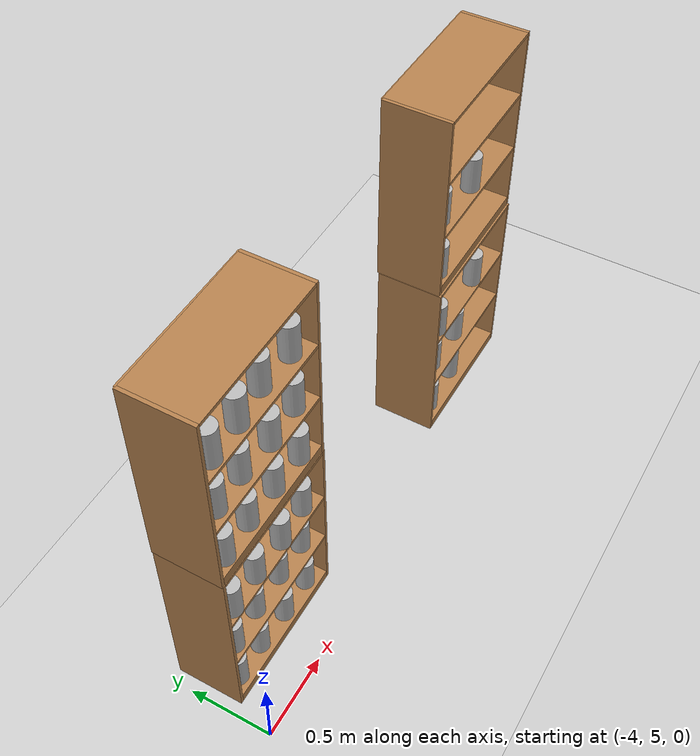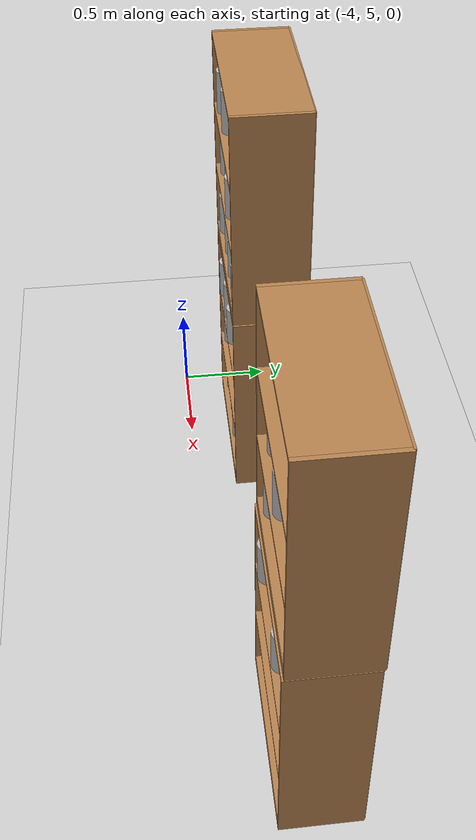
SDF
<sdf version="1.7">
 <world name="default">
  <model name="ground_plane">
   <static>1</static>
   <link name="link">
    <collision name="collision">
     <geometry><plane><normal>0 0 1</normal><size>100 100</size></plane></geometry>
     <surface><friction><ode><mu>100</mu><mu2>50</mu2></ode></friction></surface>
    </collision>
    <visual name="visual">
     <cast_shadows>0</cast_shadows>
     <geometry><plane><normal>0 0 1</normal><size>100 100</size></plane></geometry>
     <material>
      <script><uri>file://media/materials/scripts/gazebo.material</uri><name>Gazebo/Grey</name></script>
     </material>
    </visual>
   </link>
  </model>
  <model name="bookshelf_2_clone">
   <static>1</static>
   <link name="link">
    <inertial><mass>1</mass></inertial>
    <collision name="back">
     <pose>0 0.005 0.6 0 -0 0</pose>
     <geometry><box><size>0.9 0.01 1.2</size></box></geometry>
    </collision>
    <visual name="visual1">
     <pose>0 0.005 0.6 0 -0 0</pose>
     <geometry><box><size>0.9 0.01 1.2</size></box></geometry>
     <material>
      <script><uri>file://media/materials/scripts/gazebo.material</uri><name>Gazebo/Wood</name></script>
     </material>
    </visual>
    <collision name="left_side">
     <pose>0.45 -0.195 0.6 0 -0 0</pose>
     <geometry><box><size>0.02 0.4 1.2</size></box></geometry>
    </collision>
    <visual name="visual2">
     <pose>0.45 -0.195 0.6 0 -0 0</pose>
     <geometry><box><size>0.02 0.4 1.2</size></box></geometry>
     <material>
      <script><uri>file://media/materials/scripts/gazebo.material</uri><name>Gazebo/Wood</name></script>
     </material>
    </visual>
    <collision name="right_side">
     <pose>-0.45 -0.195 0.6 0 -0 0</pose>
     <geometry><box><size>0.02 0.4 1.2</size></box></geometry>
    </collision>
    <visual name="visual3">
     <pose>-0.45 -0.195 0.6 0 -0 0</pose>
     <geometry><box><size>0.02 0.4 1.2</size></box></geometry>
     <material>
      <script><uri>file://media/materials/scripts/gazebo.material</uri><name>Gazebo/Wood</name></script>
     </material>
    </visual>
    <collision name="bottom">
     <pose>0 -0.195 0.03 0 -0 0</pose>
     <geometry><box><size>0.88 0.4 0.06</size></box></geometry>
    </collision>
    <visual name="visual4">
     <pose>0 -0.195 0.03 0 -0 0</pose>
     <geometry><box><size>0.88 0.4 0.06</size></box></geometry>
     <material>
      <script><uri>file://media/materials/scripts/gazebo.material</uri><name>Gazebo/Wood</name></script>
     </material>
    </visual>
    <collision name="top">
     <pose>0 -0.195 1.19 0 -0 0</pose>
     <geometry><box><size>0.88 0.4 0.02</size></box></geometry>
    </collision>
    <visual name="visual5">
     <pose>0 -0.195 1.19 0 -0 0</pose>
     <geometry><box><size>0.88 0.4 0.02</size></box></geometry>
     <material>
      <script><uri>file://media/materials/scripts/gazebo.material</uri><name>Gazebo/Wood</name></script>
     </material>
    </visual>
    <collision name="low_shelf">
     <pose>0 -0.195 0.43 0 -0 0</pose>
     <geometry><box><size>0.88 0.4 0.02</size></box></geometry>
    </collision>
    <visual name="visual6">
     <pose>0 -0.195 0.43 0 -0 0</pose>
     <geometry><box><size>0.88 0.4 0.02</size></box></geometry>
     <material>
      <script><uri>file://media/materials/scripts/gazebo.material</uri><name>Gazebo/Wood</name></script>
     </material>
    </visual>
    <collision name="high_shelf">
     <pose>0 -0.195 0.8 0 -0 0</pose>
     <geometry><box><size>0.88 0.4 0.02</size></box></geometry>
    </collision>
    <visual name="visual7">
     <pose>0 -0.195 0.8 0 -0 0</pose>
     <geometry><box><size>0.88 0.4 0.02</size></box></geometry>
     <material>
      <script><uri>file://media/materials/scripts/gazebo.material</uri><name>Gazebo/Wood</name></script>
     </material>
    </visual>
   </link>
   <pose>-1.30264 5.59901 0 0 -0 0</pose>
  </model>
  <model name="bookshelf_2_clone_clone">
   <static>1</static>
   <link name="link">
    <inertial><mass>1</mass></inertial>
    <collision name="back">
     <pose>0 0.005 0.6 0 -0 0</pose>
     <geometry><box><size>0.9 0.01 1.2</size></box></geometry>
    </collision>
    <visual name="visual1">
     <pose>0 0.005 0.6 0 -0 0</pose>
     <geometry><box><size>0.9 0.01 1.2</size></box></geometry>
     <material>
      <script><uri>file://media/materials/scripts/gazebo.material</uri><name>Gazebo/Wood</name></script>
     </material>
    </visual>
    <collision name="left_side">
     <pose>0.45 -0.195 0.6 0 -0 0</pose>
     <geometry><box><size>0.02 0.4 1.2</size></box></geometry>
    </collision>
    <visual name="visual2">
     <pose>0.45 -0.195 0.6 0 -0 0</pose>
     <geometry><box><size>0.02 0.4 1.2</size></box></geometry>
     <material>
      <script><uri>file://media/materials/scripts/gazebo.material</uri><name>Gazebo/Wood</name></script>
     </material>
    </visual>
    <collision name="right_side">
     <pose>-0.45 -0.195 0.6 0 -0 0</pose>
     <geometry><box><size>0.02 0.4 1.2</size></box></geometry>
    </collision>
    <visual name="visual3">
     <pose>-0.45 -0.195 0.6 0 -0 0</pose>
     <geometry><box><size>0.02 0.4 1.2</size></box></geometry>
     <material>
      <script><uri>file://media/materials/scripts/gazebo.material</uri><name>Gazebo/Wood</name></script>
     </material>
    </visual>
    <collision name="bottom">
     <pose>0 -0.195 0.03 0 -0 0</pose>
     <geometry><box><size>0.88 0.4 0.06</size></box></geometry>
    </collision>
    <visual name="visual4">
     <pose>0 -0.195 0.03 0 -0 0</pose>
     <geometry><box><size>0.88 0.4 0.06</size></box></geometry>
     <material>
      <script><uri>file://media/materials/scripts/gazebo.material</uri><name>Gazebo/Wood</name></script>
     </material>
    </visual>
    <collision name="top">
     <pose>0 -0.195 1.19 0 -0 0</pose>
     <geometry><box><size>0.88 0.4 0.02</size></box></geometry>
    </collision>
    <visual name="visual5">
     <pose>0 -0.195 1.19 0 -0 0</pose>
     <geometry><box><size>0.88 0.4 0.02</size></box></geometry>
     <material>
      <script><uri>file://media/materials/scripts/gazebo.material</uri><name>Gazebo/Wood</name></script>
     </material>
    </visual>
    <collision name="low_shelf">
     <pose>0 -0.195 0.43 0 -0 0</pose>
     <geometry><box><size>0.88 0.4 0.02</size></box></geometry>
    </collision>
    <visual name="visual6">
     <pose>0 -0.195 0.43 0 -0 0</pose>
     <geometry><box><size>0.88 0.4 0.02</size></box></geometry>
     <material>
      <script><uri>file://media/materials/scripts/gazebo.material</uri><name>Gazebo/Wood</name></script>
     </material>
    </visual>
    <collision name="high_shelf">
     <pose>0 -0.195 0.8 0 -0 0</pose>
     <geometry><box><size>0.88 0.4 0.02</size></box></geometry>
    </collision>
    <visual name="visual7">
     <pose>0 -0.195 0.8 0 -0 0</pose>
     <geometry><box><size>0.88 0.4 0.02</size></box></geometry>
     <material>
      <script><uri>file://media/materials/scripts/gazebo.material</uri><name>Gazebo/Wood</name></script>
     </material>
    </visual>
   </link>
   <pose>-3.46853 5.62428 0 0 -0 0</pose>
  </model>
  <model name="bookshelf_3_clone">
   <static>1</static>
   <link name="link">
    <inertial><mass>1</mass></inertial>
    <collision name="back">
     <pose>0 0.005 0.6 0 -0 0</pose>
     <geometry><box><size>0.9 0.01 1.2</size></box></geometry>
    </collision>
    <visual name="visual1">
     <pose>0 0.005 0.6 0 -0 0</pose>
     <geometry><box><size>0.9 0.01 1.2</size></box></geometry>
     <material>
      <script><uri>file://media/materials/scripts/gazebo.material</uri><name>Gazebo/Wood</name></script>
     </material>
    </visual>
    <collision name="left_side">
     <pose>0.45 -0.195 0.6 0 -0 0</pose>
     <geometry><box><size>0.02 0.4 1.2</size></box></geometry>
    </collision>
    <visual name="visual2">
     <pose>0.45 -0.195 0.6 0 -0 0</pose>
     <geometry><box><size>0.02 0.4 1.2</size></box></geometry>
     <material>
      <script><uri>file://media/materials/scripts/gazebo.material</uri><name>Gazebo/Wood</name></script>
     </material>
    </visual>
    <collision name="right_side">
     <pose>-0.45 -0.195 0.6 0 -0 0</pose>
     <geometry><box><size>0.02 0.4 1.2</size></box></geometry>
    </collision>
    <visual name="visual3">
     <pose>-0.45 -0.195 0.6 0 -0 0</pose>
     <geometry><box><size>0.02 0.4 1.2</size></box></geometry>
     <material>
      <script><uri>file://media/materials/scripts/gazebo.material</uri><name>Gazebo/Wood</name></script>
     </material>
    </visual>
    <collision name="bottom">
     <pose>0 -0.195 0.03 0 -0 0</pose>
     <geometry><box><size>0.88 0.4 0.06</size></box></geometry>
    </collision>
    <visual name="visual4">
     <pose>0 -0.195 0.03 0 -0 0</pose>
     <geometry><box><size>0.88 0.4 0.06</size></box></geometry>
     <material>
      <script><uri>file://media/materials/scripts/gazebo.material</uri><name>Gazebo/Wood</name></script>
     </material>
    </visual>
    <collision name="top">
     <pose>0 -0.195 1.19 0 -0 0</pose>
     <geometry><box><size>0.88 0.4 0.02</size></box></geometry>
    </collision>
    <visual name="visual5">
     <pose>0 -0.195 1.19 0 -0 0</pose>
     <geometry><box><size>0.88 0.4 0.02</size></box></geometry>
     <material>
      <script><uri>file://media/materials/scripts/gazebo.material</uri><name>Gazebo/Wood</name></script>
     </material>
    </visual>
    <collision name="low_shelf">
     <pose>0 -0.195 0.43 0 -0 0</pose>
     <geometry><box><size>0.88 0.4 0.02</size></box></geometry>
    </collision>
    <visual name="visual6">
     <pose>0 -0.195 0.43 0 -0 0</pose>
     <geometry><box><size>0.88 0.4 0.02</size></box></geometry>
     <material>
      <script><uri>file://media/materials/scripts/gazebo.material</uri><name>Gazebo/Wood</name></script>
     </material>
    </visual>
    <collision name="high_shelf">
     <pose>0 -0.195 0.8 0 -0 0</pose>
     <geometry><box><size>0.88 0.4 0.02</size></box></geometry>
    </collision>
    <visual name="visual7">
     <pose>0 -0.195 0.8 0 -0 0</pose>
     <geometry><box><size>0.88 0.4 0.02</size></box></geometry>
     <material>
      <script><uri>file://media/materials/scripts/gazebo.material</uri><name>Gazebo/Wood</name></script>
     </material>
    </visual>
   </link>
   <pose>-1.30336 5.6079 1.20481 0 -0 0</pose>
  </model>
  <model name="bookshelf_3_clone_clone">
   <static>1</static>
   <link name="link">
    <inertial><mass>1</mass></inertial>
    <collision name="back">
     <pose>0 0.005 0.6 0 -0 0</pose>
     <geometry><box><size>0.9 0.01 1.2</size></box></geometry>
    </collision>
    <visual name="visual1">
     <pose>0 0.005 0.6 0 -0 0</pose>
     <geometry><box><size>0.9 0.01 1.2</size></box></geometry>
     <material>
      <script><uri>file://media/materials/scripts/gazebo.material</uri><name>Gazebo/Wood</name></script>
     </material>
    </visual>
    <collision name="left_side">
     <pose>0.45 -0.195 0.6 0 -0 0</pose>
     <geometry><box><size>0.02 0.4 1.2</size></box></geometry>
    </collision>
    <visual name="visual2">
     <pose>0.45 -0.195 0.6 0 -0 0</pose>
     <geometry><box><size>0.02 0.4 1.2</size></box></geometry>
     <material>
      <script><uri>file://media/materials/scripts/gazebo.material</uri><name>Gazebo/Wood</name></script>
     </material>
    </visual>
    <collision name="right_side">
     <pose>-0.45 -0.195 0.6 0 -0 0</pose>
     <geometry><box><size>0.02 0.4 1.2</size></box></geometry>
    </collision>
    <visual name="visual3">
     <pose>-0.45 -0.195 0.6 0 -0 0</pose>
     <geometry><box><size>0.02 0.4 1.2</size></box></geometry>
     <material>
      <script><uri>file://media/materials/scripts/gazebo.material</uri><name>Gazebo/Wood</name></script>
     </material>
    </visual>
    <collision name="bottom">
     <pose>0 -0.195 0.03 0 -0 0</pose>
     <geometry><box><size>0.88 0.4 0.06</size></box></geometry>
    </collision>
    <visual name="visual4">
     <pose>0 -0.195 0.03 0 -0 0</pose>
     <geometry><box><size>0.88 0.4 0.06</size></box></geometry>
     <material>
      <script><uri>file://media/materials/scripts/gazebo.material</uri><name>Gazebo/Wood</name></script>
     </material>
    </visual>
    <collision name="top">
     <pose>0 -0.195 1.19 0 -0 0</pose>
     <geometry><box><size>0.88 0.4 0.02</size></box></geometry>
    </collision>
    <visual name="visual5">
     <pose>0 -0.195 1.19 0 -0 0</pose>
     <geometry><box><size>0.88 0.4 0.02</size></box></geometry>
     <material>
      <script><uri>file://media/materials/scripts/gazebo.material</uri><name>Gazebo/Wood</name></script>
     </material>
    </visual>
    <collision name="low_shelf">
     <pose>0 -0.195 0.43 0 -0 0</pose>
     <geometry><box><size>0.88 0.4 0.02</size></box></geometry>
    </collision>
    <visual name="visual6">
     <pose>0 -0.195 0.43 0 -0 0</pose>
     <geometry><box><size>0.88 0.4 0.02</size></box></geometry>
     <material>
      <script><uri>file://media/materials/scripts/gazebo.material</uri><name>Gazebo/Wood</name></script>
     </material>
    </visual>
    <collision name="high_shelf">
     <pose>0 -0.195 0.8 0 -0 0</pose>
     <geometry><box><size>0.88 0.4 0.02</size></box></geometry>
    </collision>
    <visual name="visual7">
     <pose>0 -0.195 0.8 0 -0 0</pose>
     <geometry><box><size>0.88 0.4 0.02</size></box></geometry>
     <material>
      <script><uri>file://media/materials/scripts/gazebo.material</uri><name>Gazebo/Wood</name></script>
     </material>
    </visual>
   </link>
   <pose>-3.47373 5.62521 1.20481 0 -0 0</pose>
  </model>
  <model name="beer">
   <link name="link">
    <pose>0 0 0.115 0 -0 0</pose>
    <inertial>
     <mass>0.39</mass>
     <inertia><ixx>0.00058</ixx><ixy>0</ixy><ixz>0</ixz><iyy>0.00058</iyy><iyz>0</iyz><izz>0.00019</izz></inertia>
    </inertial>
    <collision name="collision">
     <geometry><cylinder><radius>0.055</radius><length>0.23</length></cylinder></geometry>
    </collision>
    <visual name="visual">
     <geometry><cylinder><radius>0.055</radius><length>0.23</length></cylinder></geometry>
     <material>
      <script>
       <uri>model://beer/materials/scripts</uri>
       <uri>model://beer/materials/textures</uri>
       <name>Beer/Diffuse</name>
      </script>
     </material>
    </visual>
   </link>
   <pose>-3.82317 5.30787 0.05999 -1e-06 2.6e-05 0.033014</pose>
  </model>
  <model name="beer_0">
   <link name="link">
    <pose>0 0 0.115 0 -0 0</pose>
    <inertial>
     <mass>0.39</mass>
     <inertia><ixx>0.00058</ixx><ixy>0</ixy><ixz>0</ixz><iyy>0.00058</iyy><iyz>0</iyz><izz>0.00019</izz></inertia>
    </inertial>
    <collision name="collision">
     <geometry><cylinder><radius>0.055</radius><length>0.23</length></cylinder></geometry>
    </collision>
    <visual name="visual">
     <geometry><cylinder><radius>0.055</radius><length>0.23</length></cylinder></geometry>
     <material>
      <script>
       <uri>model://beer/materials/scripts</uri>
       <uri>model://beer/materials/textures</uri>
       <name>Beer/Diffuse</name>
      </script>
     </material>
    </visual>
   </link>
   <pose>-3.60614 5.31067 0.059992 2.8e-05 5e-06 0.069484</pose>
  </model>
  <model name="beer_1">
   <link name="link">
    <pose>0 0 0.115 0 -0 0</pose>
    <inertial>
     <mass>0.39</mass>
     <inertia><ixx>0.00058</ixx><ixy>0</ixy><ixz>0</ixz><iyy>0.00058</iyy><iyz>0</iyz><izz>0.00019</izz></inertia>
    </inertial>
    <collision name="collision">
     <geometry><cylinder><radius>0.055</radius><length>0.23</length></cylinder></geometry>
    </collision>
    <visual name="visual">
     <geometry><cylinder><radius>0.055</radius><length>0.23</length></cylinder></geometry>
     <material>
      <script>
       <uri>model://beer/materials/scripts</uri>
       <uri>model://beer/materials/textures</uri>
       <name>Beer/Diffuse</name>
      </script>
     </material>
    </visual>
   </link>
   <pose>-3.37553 5.29923 0.059991 9e-06 -1.6e-05 0.034545</pose>
  </model>
  <model name="beer_2">
   <link name="link">
    <pose>0 0 0.115 0 -0 0</pose>
    <inertial>
     <mass>0.39</mass>
     <inertia><ixx>0.00058</ixx><ixy>0</ixy><ixz>0</ixz><iyy>0.00058</iyy><iyz>0</iyz><izz>0.00019</izz></inertia>
    </inertial>
    <collision name="collision">
     <geometry><cylinder><radius>0.055</radius><length>0.23</length></cylinder></geometry>
    </collision>
    <visual name="visual">
     <geometry><cylinder><radius>0.055</radius><length>0.23</length></cylinder></geometry>
     <material>
      <script>
       <uri>model://beer/materials/scripts</uri>
       <uri>model://beer/materials/textures</uri>
       <name>Beer/Diffuse</name>
      </script>
     </material>
    </visual>
   </link>
   <pose>-3.1447 5.30318 0.060001 1.9e-05 1e-05 0.008843</pose>
  </model>
  <model name="beer_3_clone">
   <link name="link">
    <pose>0 0 0.115 0 -0 0</pose>
    <inertial>
     <mass>0.39</mass>
     <inertia><ixx>0.00058</ixx><ixy>0</ixy><ixz>0</ixz><iyy>0.00058</iyy><iyz>0</iyz><izz>0.00019</izz></inertia>
    </inertial>
    <collision name="collision">
     <geometry><cylinder><radius>0.055</radius><length>0.23</length></cylinder></geometry>
    </collision>
    <visual name="visual">
     <geometry><cylinder><radius>0.055</radius><length>0.23</length></cylinder></geometry>
     <material>
      <script>
       <uri>model://beer/materials/scripts</uri>
       <uri>model://beer/materials/textures</uri>
       <name>Beer/Diffuse</name>
      </script>
     </material>
    </visual>
   </link>
   <pose>-3.60913 5.314 0.439992 1e-06 -2.8e-05 0.05272</pose>
  </model>
  <model name="beer_3_clone_0">
   <link name="link">
    <pose>0 0 0.115 0 -0 0</pose>
    <inertial>
     <mass>0.39</mass>
     <inertia><ixx>0.00058</ixx><ixy>0</ixy><ixz>0</ixz><iyy>0.00058</iyy><iyz>0</iyz><izz>0.00019</izz></inertia>
    </inertial>
    <collision name="collision">
     <geometry><cylinder><radius>0.055</radius><length>0.23</length></cylinder></geometry>
    </collision>
    <visual name="visual">
     <geometry><cylinder><radius>0.055</radius><length>0.23</length></cylinder></geometry>
     <material>
      <script>
       <uri>model://beer/materials/scripts</uri>
       <uri>model://beer/materials/textures</uri>
       <name>Beer/Diffuse</name>
      </script>
     </material>
    </visual>
   </link>
   <pose>-3.37405 5.31588 0.440001 -1e-06 2.6e-05 0.032316</pose>
  </model>
  <model name="beer_3_clone_1">
   <link name="link">
    <pose>0 0 0.115 0 -0 0</pose>
    <inertial>
     <mass>0.39</mass>
     <inertia><ixx>0.00058</ixx><ixy>0</ixy><ixz>0</ixz><iyy>0.00058</iyy><iyz>0</iyz><izz>0.00019</izz></inertia>
    </inertial>
    <collision name="collision">
     <geometry><cylinder><radius>0.055</radius><length>0.23</length></cylinder></geometry>
    </collision>
    <visual name="visual">
     <geometry><cylinder><radius>0.055</radius><length>0.23</length></cylinder></geometry>
     <material>
      <script>
       <uri>model://beer/materials/scripts</uri>
       <uri>model://beer/materials/textures</uri>
       <name>Beer/Diffuse</name>
      </script>
     </material>
    </visual>
   </link>
   <pose>-3.15021 5.31608 0.440001 1.5e-05 -2.1e-05 0.013857</pose>
  </model>
  <model name="beer_1_clone">
   <link name="link">
    <pose>0 0 0.115 0 -0 0</pose>
    <inertial>
     <mass>0.39</mass>
     <inertia><ixx>0.00058</ixx><ixy>0</ixy><ixz>0</ixz><iyy>0.00058</iyy><iyz>0</iyz><izz>0.00019</izz></inertia>
    </inertial>
    <collision name="collision">
     <geometry><cylinder><radius>0.055</radius><length>0.23</length></cylinder></geometry>
    </collision>
    <visual name="visual">
     <geometry><cylinder><radius>0.055</radius><length>0.23</length></cylinder></geometry>
     <material>
      <script>
       <uri>model://beer/materials/scripts</uri>
       <uri>model://beer/materials/textures</uri>
       <name>Beer/Diffuse</name>
      </script>
     </material>
    </visual>
   </link>
   <pose>-1.63131 5.28745 0.060001 1e-06 -2.7e-05 0.028112</pose>
  </model>
  <model name="beer_1_clone_0">
   <link name="link">
    <pose>0 0 0.115 0 -0 0</pose>
    <inertial>
     <mass>0.39</mass>
     <inertia><ixx>0.00058</ixx><ixy>0</ixy><ixz>0</ixz><iyy>0.00058</iyy><iyz>0</iyz><izz>0.00019</izz></inertia>
    </inertial>
    <collision name="collision">
     <geometry><cylinder><radius>0.055</radius><length>0.23</length></cylinder></geometry>
    </collision>
    <visual name="visual">
     <geometry><cylinder><radius>0.055</radius><length>0.23</length></cylinder></geometry>
     <material>
      <script>
       <uri>model://beer/materials/scripts</uri>
       <uri>model://beer/materials/textures</uri>
       <name>Beer/Diffuse</name>
      </script>
     </material>
    </visual>
   </link>
   <pose>-1.31844 5.30035 0.060002 2.8e-05 5e-06 0.011461</pose>
  </model>
  <model name="beer_3_clone_1_clone">
   <link name="link">
    <pose>0 0 0.115 0 -0 0</pose>
    <inertial>
     <mass>0.39</mass>
     <inertia><ixx>0.00058</ixx><ixy>0</ixy><ixz>0</ixz><iyy>0.00058</iyy><iyz>0</iyz><izz>0.00019</izz></inertia>
    </inertial>
    <collision name="collision">
     <geometry><cylinder><radius>0.055</radius><length>0.23</length></cylinder></geometry>
    </collision>
    <visual name="visual">
     <geometry><cylinder><radius>0.055</radius><length>0.23</length></cylinder></geometry>
     <material>
      <script>
       <uri>model://beer/materials/scripts</uri>
       <uri>model://beer/materials/textures</uri>
       <name>Beer/Diffuse</name>
      </script>
     </material>
    </visual>
   </link>
   <pose>-1.62515 5.29266 0.439992 -1e-06 2.7e-05 0.032814</pose>
  </model>
  <model name="beer_3_clone_1_clone_0">
   <link name="link">
    <pose>0 0 0.115 0 -0 0</pose>
    <inertial>
     <mass>0.39</mass>
     <inertia><ixx>0.00058</ixx><ixy>0</ixy><ixz>0</ixz><iyy>0.00058</iyy><iyz>0</iyz><izz>0.00019</izz></inertia>
    </inertial>
    <collision name="collision">
     <geometry><cylinder><radius>0.055</radius><length>0.23</length></cylinder></geometry>
    </collision>
    <visual name="visual">
     <geometry><cylinder><radius>0.055</radius><length>0.23</length></cylinder></geometry>
     <material>
      <script>
       <uri>model://beer/materials/scripts</uri>
       <uri>model://beer/materials/textures</uri>
       <name>Beer/Diffuse</name>
      </script>
     </material>
    </visual>
   </link>
   <pose>-1.32679 5.29036 0.440001 8e-06 2.5e-05 0.043128</pose>
  </model>
  <model name="beer_3_clone_clone_0">
   <link name="link">
    <pose>0 0 0.115 0 -0 0</pose>
    <inertial>
     <mass>0.39</mass>
     <inertia><ixx>0.00058</ixx><ixy>0</ixy><ixz>0</ixz><iyy>0.00058</iyy><iyz>0</iyz><izz>0.00019</izz></inertia>
    </inertial>
    <collision name="collision">
     <geometry><cylinder><radius>0.055</radius><length>0.23</length></cylinder></geometry>
    </collision>
    <visual name="visual">
     <geometry><cylinder><radius>0.055</radius><length>0.23</length></cylinder></geometry>
     <material>
      <script>
       <uri>model://beer/materials/scripts</uri>
       <uri>model://beer/materials/textures</uri>
       <name>Beer/Diffuse</name>
      </script>
     </material>
    </visual>
   </link>
   <pose>-3.8305 5.29924 0.439991 3e-06 1.3e-05 0.031266</pose>
  </model>
  <model name="beer_3_clone_clone_clone">
   <link name="link">
    <pose>0 0 0.115 0 -0 0</pose>
    <inertial>
     <mass>0.39</mass>
     <inertia><ixx>0.00058</ixx><ixy>0</ixy><ixz>0</ixz><iyy>0.00058</iyy><iyz>0</iyz><izz>0.00019</izz></inertia>
    </inertial>
    <collision name="collision">
     <geometry><cylinder><radius>0.055</radius><length>0.23</length></cylinder></geometry>
    </collision>
    <visual name="visual">
     <geometry><cylinder><radius>0.055</radius><length>0.23</length></cylinder></geometry>
     <material>
      <script>
       <uri>model://beer/materials/scripts</uri>
       <uri>model://beer/materials/textures</uri>
       <name>Beer/Diffuse</name>
      </script>
     </material>
    </visual>
   </link>
   <pose>-3.60941 5.2856 0.809992 3.8e-05 -6e-06 0.033975</pose>
  </model>
  <model name="beer_3_clone_clone_clone_clone">
   <link name="link">
    <pose>0 0 0.115 0 -0 0</pose>
    <inertial>
     <mass>0.39</mass>
     <inertia><ixx>0.00058</ixx><ixy>0</ixy><ixz>0</ixz><iyy>0.00058</iyy><iyz>0</iyz><izz>0.00019</izz></inertia>
    </inertial>
    <collision name="collision">
     <geometry><cylinder><radius>0.055</radius><length>0.23</length></cylinder></geometry>
    </collision>
    <visual name="visual">
     <geometry><cylinder><radius>0.055</radius><length>0.23</length></cylinder></geometry>
     <material>
      <script>
       <uri>model://beer/materials/scripts</uri>
       <uri>model://beer/materials/textures</uri>
       <name>Beer/Diffuse</name>
      </script>
     </material>
    </visual>
   </link>
   <pose>-3.37631 5.28052 0.810001 -2e-06 2.7e-05 0.023234</pose>
  </model>
  <model name="beer_3_clone_clone_clone_clone_0">
   <link name="link">
    <pose>0 0 0.115 0 -0 0</pose>
    <inertial>
     <mass>0.39</mass>
     <inertia><ixx>0.00058</ixx><ixy>0</ixy><ixz>0</ixz><iyy>0.00058</iyy><iyz>0</iyz><izz>0.00019</izz></inertia>
    </inertial>
    <collision name="collision">
     <geometry><cylinder><radius>0.055</radius><length>0.23</length></cylinder></geometry>
    </collision>
    <visual name="visual">
     <geometry><cylinder><radius>0.055</radius><length>0.23</length></cylinder></geometry>
     <material>
      <script>
       <uri>model://beer/materials/scripts</uri>
       <uri>model://beer/materials/textures</uri>
       <name>Beer/Diffuse</name>
      </script>
     </material>
    </visual>
   </link>
   <pose>-3.14883 5.29388 0.80999 -1.1e-05 2e-06 0.02577</pose>
  </model>
  <model name="beer_3_clone_clone_clone_clone_2">
   <link name="link">
    <pose>0 0 0.115 0 -0 0</pose>
    <inertial>
     <mass>0.39</mass>
     <inertia><ixx>0.00058</ixx><ixy>0</ixy><ixz>0</ixz><iyy>0.00058</iyy><iyz>0</iyz><izz>0.00019</izz></inertia>
    </inertial>
    <collision name="collision">
     <geometry><cylinder><radius>0.055</radius><length>0.23</length></cylinder></geometry>
    </collision>
    <visual name="visual">
     <geometry><cylinder><radius>0.055</radius><length>0.23</length></cylinder></geometry>
     <material>
      <script>
       <uri>model://beer/materials/scripts</uri>
       <uri>model://beer/materials/textures</uri>
       <name>Beer/Diffuse</name>
      </script>
     </material>
    </visual>
   </link>
   <pose>-3.82308 5.28091 0.809992 2.5e-05 1.7e-05 0.025071</pose>
  </model>
  <model name="beer_3_clone_clone_clone_clone_1_clone">
   <link name="link">
    <pose>0 0 0.115 0 -0 0</pose>
    <inertial>
     <mass>0.39</mass>
     <inertia><ixx>0.00058</ixx><ixy>0</ixy><ixz>0</ixz><iyy>0.00058</iyy><iyz>0</iyz><izz>0.00019</izz></inertia>
    </inertial>
    <collision name="collision">
     <geometry><cylinder><radius>0.055</radius><length>0.23</length></cylinder></geometry>
    </collision>
    <visual name="visual">
     <geometry><cylinder><radius>0.055</radius><length>0.23</length></cylinder></geometry>
     <material>
      <script>
       <uri>model://beer/materials/scripts</uri>
       <uri>model://beer/materials/textures</uri>
       <name>Beer/Diffuse</name>
      </script>
     </material>
    </visual>
   </link>
   <pose>-3.60069 5.30014 1.26481 -3e-06 2.1e-05 0.05691</pose>
  </model>
  <model name="beer_3_clone_clone_clone_clone_1_clone_0">
   <link name="link">
    <pose>0 0 0.115 0 -0 0</pose>
    <inertial>
     <mass>0.39</mass>
     <inertia><ixx>0.00058</ixx><ixy>0</ixy><ixz>0</ixz><iyy>0.00058</iyy><iyz>0</iyz><izz>0.00019</izz></inertia>
    </inertial>
    <collision name="collision">
     <geometry><cylinder><radius>0.055</radius><length>0.23</length></cylinder></geometry>
    </collision>
    <visual name="visual">
     <geometry><cylinder><radius>0.055</radius><length>0.23</length></cylinder></geometry>
     <material>
      <script>
       <uri>model://beer/materials/scripts</uri>
       <uri>model://beer/materials/textures</uri>
       <name>Beer/Diffuse</name>
      </script>
     </material>
    </visual>
   </link>
   <pose>-3.37709 5.2947 1.2648 -1e-06 2.6e-05 0.041204</pose>
  </model>
  <model name="beer_3_clone_clone_clone_clone_1_clone_1">
   <link name="link">
    <pose>0 0 0.115 0 -0 0</pose>
    <inertial>
     <mass>0.39</mass>
     <inertia><ixx>0.00058</ixx><ixy>0</ixy><ixz>0</ixz><iyy>0.00058</iyy><iyz>0</iyz><izz>0.00019</izz></inertia>
    </inertial>
    <collision name="collision">
     <geometry><cylinder><radius>0.055</radius><length>0.23</length></cylinder></geometry>
    </collision>
    <visual name="visual">
     <geometry><cylinder><radius>0.055</radius><length>0.23</length></cylinder></geometry>
     <material>
      <script>
       <uri>model://beer/materials/scripts</uri>
       <uri>model://beer/materials/textures</uri>
       <name>Beer/Diffuse</name>
      </script>
     </material>
    </visual>
   </link>
   <pose>-3.153 5.28934 1.26481 1.6e-05 -1.7e-05 0.02779</pose>
  </model>
  <model name="beer_3_clone_clone_clone_clone_1_clone_clone">
   <link name="link">
    <pose>0 0 0.115 0 -0 0</pose>
    <inertial>
     <mass>0.39</mass>
     <inertia><ixx>0.00058</ixx><ixy>0</ixy><ixz>0</ixz><iyy>0.00058</iyy><iyz>0</iyz><izz>0.00019</izz></inertia>
    </inertial>
    <collision name="collision">
     <geometry><cylinder><radius>0.055</radius><length>0.23</length></cylinder></geometry>
    </collision>
    <visual name="visual">
     <geometry><cylinder><radius>0.055</radius><length>0.23</length></cylinder></geometry>
     <material>
      <script>
       <uri>model://beer/materials/scripts</uri>
       <uri>model://beer/materials/textures</uri>
       <name>Beer/Diffuse</name>
      </script>
     </material>
    </visual>
   </link>
   <pose>-3.81529 5.29073 1.26481 2.6e-05 2.1e-05 0.033947</pose>
  </model>
  <model name="beer_3_clone_clone_clone_clone_1_clone_2">
   <link name="link">
    <pose>0 0 0.115 0 -0 0</pose>
    <inertial>
     <mass>0.39</mass>
     <inertia><ixx>0.00058</ixx><ixy>0</ixy><ixz>0</ixz><iyy>0.00058</iyy><iyz>0</iyz><izz>0.00019</izz></inertia>
    </inertial>
    <collision name="collision">
     <geometry><cylinder><radius>0.055</radius><length>0.23</length></cylinder></geometry>
    </collision>
    <visual name="visual">
     <geometry><cylinder><radius>0.055</radius><length>0.23</length></cylinder></geometry>
     <material>
      <script>
       <uri>model://beer/materials/scripts</uri>
       <uri>model://beer/materials/textures</uri>
       <name>Beer/Diffuse</name>
      </script>
     </material>
    </visual>
   </link>
   <pose>-3.60665 5.30831 1.64481 2.8e-05 6e-06 0.051455</pose>
  </model>
  <model name="beer_3_clone_clone_clone_clone_1_clone_3">
   <link name="link">
    <pose>0 0 0.115 0 -0 0</pose>
    <inertial>
     <mass>0.39</mass>
     <inertia><ixx>0.00058</ixx><ixy>0</ixy><ixz>0</ixz><iyy>0.00058</iyy><iyz>0</iyz><izz>0.00019</izz></inertia>
    </inertial>
    <collision name="collision">
     <geometry><cylinder><radius>0.055</radius><length>0.23</length></cylinder></geometry>
    </collision>
    <visual name="visual">
     <geometry><cylinder><radius>0.055</radius><length>0.23</length></cylinder></geometry>
     <material>
      <script>
       <uri>model://beer/materials/scripts</uri>
       <uri>model://beer/materials/textures</uri>
       <name>Beer/Diffuse</name>
      </script>
     </material>
    </visual>
   </link>
   <pose>-3.38473 5.28834 1.64481 -1e-06 2.7e-05 0.03757</pose>
  </model>
  <model name="beer_3_clone_clone_clone_clone_1_clone_4">
   <link name="link">
    <pose>0 0 0.115 0 -0 0</pose>
    <inertial>
     <mass>0.39</mass>
     <inertia><ixx>0.00058</ixx><ixy>0</ixy><ixz>0</ixz><iyy>0.00058</iyy><iyz>0</iyz><izz>0.00019</izz></inertia>
    </inertial>
    <collision name="collision">
     <geometry><cylinder><radius>0.055</radius><length>0.23</length></cylinder></geometry>
    </collision>
    <visual name="visual">
     <geometry><cylinder><radius>0.055</radius><length>0.23</length></cylinder></geometry>
     <material>
      <script>
       <uri>model://beer/materials/scripts</uri>
       <uri>model://beer/materials/textures</uri>
       <name>Beer/Diffuse</name>
      </script>
     </material>
    </visual>
   </link>
   <pose>-3.15409 5.30206 1.64481 1.2e-05 -1.3e-05 0.027102</pose>
  </model>
  <model name="beer_3_clone_clone_clone_clone_1_clone_2_clone_0">
   <link name="link">
    <pose>0 0 0.115 0 -0 0</pose>
    <inertial>
     <mass>0.39</mass>
     <inertia><ixx>0.00058</ixx><ixy>0</ixy><ixz>0</ixz><iyy>0.00058</iyy><iyz>0</iyz><izz>0.00019</izz></inertia>
    </inertial>
    <collision name="collision">
     <geometry><cylinder><radius>0.055</radius><length>0.23</length></cylinder></geometry>
    </collision>
    <visual name="visual">
     <geometry><cylinder><radius>0.055</radius><length>0.23</length></cylinder></geometry>
     <material>
      <script>
       <uri>model://beer/materials/scripts</uri>
       <uri>model://beer/materials/textures</uri>
       <name>Beer/Diffuse</name>
      </script>
     </material>
    </visual>
   </link>
   <pose>-3.81197 5.30252 1.64481 -2e-05 -4e-06 0.036989</pose>
  </model>
  <model name="beer_3_clone_clone_clone_clone_1_clone_2_clone_clone">
   <link name="link">
    <pose>0 0 0.115 0 -0 0</pose>
    <inertial>
     <mass>0.39</mass>
     <inertia><ixx>0.00058</ixx><ixy>0</ixy><ixz>0</ixz><iyy>0.00058</iyy><iyz>0</iyz><izz>0.00019</izz></inertia>
    </inertial>
    <collision name="collision">
     <geometry><cylinder><radius>0.055</radius><length>0.23</length></cylinder></geometry>
    </collision>
    <visual name="visual">
     <geometry><cylinder><radius>0.055</radius><length>0.23</length></cylinder></geometry>
     <material>
      <script>
       <uri>model://beer/materials/scripts</uri>
       <uri>model://beer/materials/textures</uri>
       <name>Beer/Diffuse</name>
      </script>
     </material>
    </visual>
   </link>
   <pose>-3.59694 5.29694 2.01481 2.2e-05 1.3e-05 0.050829</pose>
  </model>
  <model name="beer_3_clone_clone_clone_clone_1_clone_2_clone_clone_clone">
   <link name="link">
    <pose>0 0 0.115 0 -0 0</pose>
    <inertial>
     <mass>0.39</mass>
     <inertia><ixx>0.00058</ixx><ixy>0</ixy><ixz>0</ixz><iyy>0.00058</iyy><iyz>0</iyz><izz>0.00019</izz></inertia>
    </inertial>
    <collision name="collision">
     <geometry><cylinder><radius>0.055</radius><length>0.23</length></cylinder></geometry>
    </collision>
    <visual name="visual">
     <geometry><cylinder><radius>0.055</radius><length>0.23</length></cylinder></geometry>
     <material>
      <script>
       <uri>model://beer/materials/scripts</uri>
       <uri>model://beer/materials/textures</uri>
       <name>Beer/Diffuse</name>
      </script>
     </material>
    </visual>
   </link>
   <pose>-3.81004 5.29259 2.0148 1e-06 -2.7e-05 0.036955</pose>
  </model>
  <model name="beer_3_clone_clone_clone_clone_1_clone_2_clone_clone_clone_0">
   <link name="link">
    <pose>0 0 0.115 0 -0 0</pose>
    <inertial>
     <mass>0.39</mass>
     <inertia><ixx>0.00058</ixx><ixy>0</ixy><ixz>0</ixz><iyy>0.00058</iyy><iyz>0</iyz><izz>0.00019</izz></inertia>
    </inertial>
    <collision name="collision">
     <geometry><cylinder><radius>0.055</radius><length>0.23</length></cylinder></geometry>
    </collision>
    <visual name="visual">
     <geometry><cylinder><radius>0.055</radius><length>0.23</length></cylinder></geometry>
     <material>
      <script>
       <uri>model://beer/materials/scripts</uri>
       <uri>model://beer/materials/textures</uri>
       <name>Beer/Diffuse</name>
      </script>
     </material>
    </visual>
   </link>
   <pose>-3.38133 5.32164 2.01481 -1e-06 2.6e-05 0.035428</pose>
  </model>
  <model name="beer_3_clone_clone_clone_clone_1_clone_2_clone_clone_clone_1">
   <link name="link">
    <pose>0 0 0.115 0 -0 0</pose>
    <inertial>
     <mass>0.39</mass>
     <inertia><ixx>0.00058</ixx><ixy>0</ixy><ixz>0</ixz><iyy>0.00058</iyy><iyz>0</iyz><izz>0.00019</izz></inertia>
    </inertial>
    <collision name="collision">
     <geometry><cylinder><radius>0.055</radius><length>0.23</length></cylinder></geometry>
    </collision>
    <visual name="visual">
     <geometry><cylinder><radius>0.055</radius><length>0.23</length></cylinder></geometry>
     <material>
      <script>
       <uri>model://beer/materials/scripts</uri>
       <uri>model://beer/materials/textures</uri>
       <name>Beer/Diffuse</name>
      </script>
     </material>
    </visual>
   </link>
   <pose>-3.14916 5.30944 2.01481 1.3e-05 -1.7e-05 0.024418</pose>
  </model>
  <model name="beer_3_clone_clone_clone_clone_clone_0">
   <link name="link">
    <pose>0 0 0.115 0 -0 0</pose>
    <inertial>
     <mass>0.39</mass>
     <inertia><ixx>0.00058</ixx><ixy>0</ixy><ixz>0</ixz><iyy>0.00058</iyy><iyz>0</iyz><izz>0.00019</izz></inertia>
    </inertial>
    <collision name="collision">
     <geometry><cylinder><radius>0.055</radius><length>0.23</length></cylinder></geometry>
    </collision>
    <visual name="visual">
     <geometry><cylinder><radius>0.055</radius><length>0.23</length></cylinder></geometry>
     <material>
      <script>
       <uri>model://beer/materials/scripts</uri>
       <uri>model://beer/materials/textures</uri>
       <name>Beer/Diffuse</name>
      </script>
     </material>
    </visual>
   </link>
   <pose>-1.66064 5.25839 0.809992 1.2e-05 3.3e-05 0.031746</pose>
  </model>
  <model name="beer_3_clone_clone_clone_clone_clone_1">
   <link name="link">
    <pose>0 0 0.115 0 -0 0</pose>
    <inertial>
     <mass>0.39</mass>
     <inertia><ixx>0.00058</ixx><ixy>0</ixy><ixz>0</ixz><iyy>0.00058</iyy><iyz>0</iyz><izz>0.00019</izz></inertia>
    </inertial>
    <collision name="collision">
     <geometry><cylinder><radius>0.055</radius><length>0.23</length></cylinder></geometry>
    </collision>
    <visual name="visual">
     <geometry><cylinder><radius>0.055</radius><length>0.23</length></cylinder></geometry>
     <material>
      <script>
       <uri>model://beer/materials/scripts</uri>
       <uri>model://beer/materials/textures</uri>
       <name>Beer/Diffuse</name>
      </script>
     </material>
    </visual>
   </link>
   <pose>-1.18367 5.26149 0.810001 -1e-06 2.6e-05 0.034639</pose>
  </model>
  <model name="beer_3_clone_clone_clone_clone_1_clone_1_clone">
   <link name="link">
    <pose>0 0 0.115 0 -0 0</pose>
    <inertial>
     <mass>0.39</mass>
     <inertia><ixx>0.00058</ixx><ixy>0</ixy><ixz>0</ixz><iyy>0.00058</iyy><iyz>0</iyz><izz>0.00019</izz></inertia>
    </inertial>
    <collision name="collision">
     <geometry><cylinder><radius>0.055</radius><length>0.23</length></cylinder></geometry>
    </collision>
    <visual name="visual">
     <geometry><cylinder><radius>0.055</radius><length>0.23</length></cylinder></geometry>
     <material>
      <script>
       <uri>model://beer/materials/scripts</uri>
       <uri>model://beer/materials/textures</uri>
       <name>Beer/Diffuse</name>
      </script>
     </material>
    </visual>
   </link>
   <pose>-1.6527 5.28377 1.2648 1.5e-05 2.2e-05 0.033348</pose>
  </model>
  <model name="beer_3_clone_clone_clone_clone_1_clone_4_clone">
   <link name="link">
    <pose>0 0 0.115 0 -0 0</pose>
    <inertial>
     <mass>0.39</mass>
     <inertia><ixx>0.00058</ixx><ixy>0</ixy><ixz>0</ixz><iyy>0.00058</iyy><iyz>0</iyz><izz>0.00019</izz></inertia>
    </inertial>
    <collision name="collision">
     <geometry><cylinder><radius>0.055</radius><length>0.23</length></cylinder></geometry>
    </collision>
    <visual name="visual">
     <geometry><cylinder><radius>0.055</radius><length>0.23</length></cylinder></geometry>
     <material>
      <script>
       <uri>model://beer/materials/scripts</uri>
       <uri>model://beer/materials/textures</uri>
       <name>Beer/Diffuse</name>
      </script>
     </material>
    </visual>
   </link>
   <pose>-1.31089 5.27785 1.64481 -9e-06 -3e-06 0.039434</pose>
  </model>
  <model name="beer_3_clone_clone_clone_clone_1_clone_4_clone_0">
   <link name="link">
    <pose>0 0 0.115 0 -0 0</pose>
    <inertial>
     <mass>0.39</mass>
     <inertia><ixx>0.00058</ixx><ixy>0</ixy><ixz>0</ixz><iyy>0.00058</iyy><iyz>0</iyz><izz>0.00019</izz></inertia>
    </inertial>
    <collision name="collision">
     <geometry><cylinder><radius>0.055</radius><length>0.23</length></cylinder></geometry>
    </collision>
    <visual name="visual">
     <geometry><cylinder><radius>0.055</radius><length>0.23</length></cylinder></geometry>
     <material>
      <script>
       <uri>model://beer/materials/scripts</uri>
       <uri>model://beer/materials/textures</uri>
       <name>Beer/Diffuse</name>
      </script>
     </material>
    </visual>
   </link>
   <pose>-1.64335 5.29854 1.64481 -1e-06 2.6e-05 0.036246</pose>
  </model>
 </world>
</sdf>
